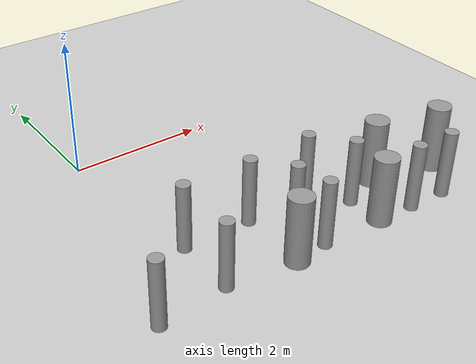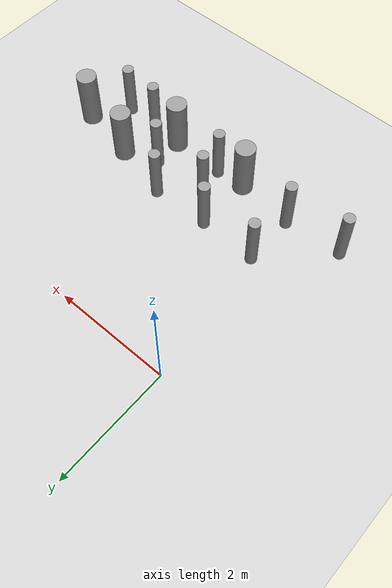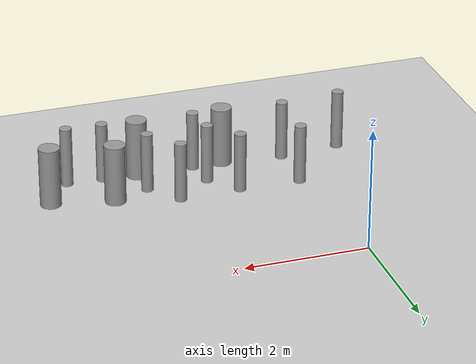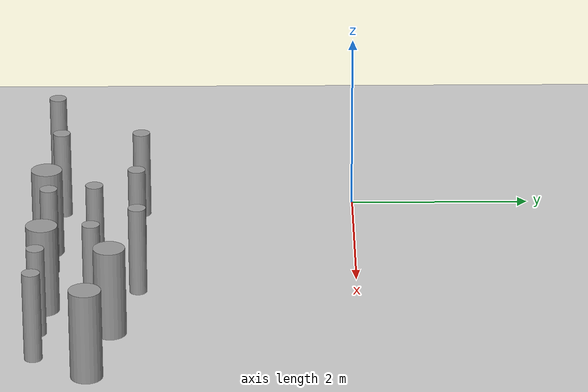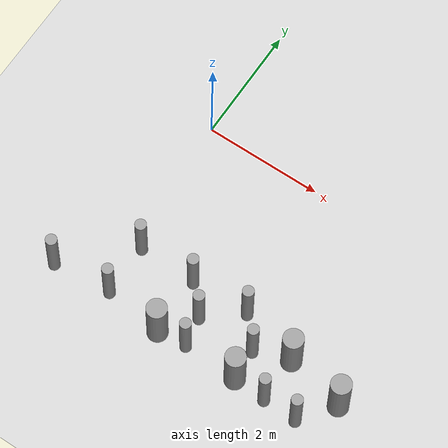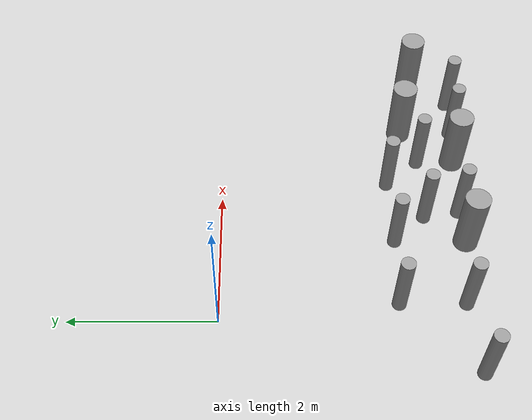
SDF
<sdf version="1.6">
 <world name="default">
  <model name="ground_plane">
   <static>1</static>
   <link name="link">
    <collision name="collision">
     <geometry><plane><normal>0 0 1</normal><size>100 100</size></plane></geometry>
     <surface><friction><ode><mu>100</mu><mu2>50</mu2></ode></friction></surface>
    </collision>
    <visual name="visual">
     <cast_shadows>0</cast_shadows>
     <geometry><plane><normal>0 0 1</normal><size>100 100</size></plane></geometry>
     <material>
      <script><uri>file://media/materials/scripts/gazebo.material</uri><name>Gazebo/Grey</name></script>
     </material>
    </visual>
   </link>
  </model>
  <model name="cyl_wall_clone_0_clone">
   <link name="link_0">
    <pose>-2.73893 -0.366465 0 0 -0 0</pose>
    <inertial>
     <mass>0.0374993</mass>
     <inertia>
      <ixx>0.00321281</ixx>
      <ixy>0</ixy>
      <ixz>0</ixz>
      <iyy>0.00321281</iyy>
      <iyz>0</iyz>
      <izz>0.000175774</izz>
     </inertia>
    </inertial>
    <visual name="visual">
     <geometry><cylinder><radius>0.0968661</radius><length>1</length></cylinder></geometry>
     <material>
      <lighting>1</lighting>
      <script><uri>file://media/materials/scripts/gazebo.material</uri><name>Gazebo/Grey</name></script>
      <ambient>0.3 0.3 0.3 1</ambient>
      <diffuse>0.7 0.7 0.7 1</diffuse>
      <specular>0.01 0.01 0.01 1</specular>
      <emissive>0 0 0 1</emissive>
     </material>
    </visual>
    <collision name="collision">
     <geometry><cylinder><radius>0.096866</radius><length>1</length></cylinder></geometry>
     <surface>
      <friction>
       <ode><mu>1</mu><mu2>1</mu2><fdir1>0 0 0</fdir1><slip1>0</slip1><slip2>0</slip2></ode>
       <torsional>
        <coefficient>1</coefficient>
        <patch_radius>0</patch_radius>
        <surface_radius>0</surface_radius>
        <use_patch_radius>1</use_patch_radius>
        <ode><slip>0</slip></ode>
       </torsional>
      </friction>
      <bounce><restitution_coefficient>0</restitution_coefficient><threshold>1e+06</threshold></bounce>
      <contact>
       <collide_without_contact>0</collide_without_contact>
       <collide_without_contact_bitmask>1</collide_without_contact_bitmask>
       <collide_bitmask>1</collide_bitmask>
       <ode>
        <soft_cfm>0</soft_cfm>
        <soft_erp>0.2</soft_erp>
        <kp>1e+13</kp>
        <kd>1</kd>
        <max_vel>0.01</max_vel>
        <min_depth>0</min_depth>
       </ode>
       <bullet>
        <split_impulse>1</split_impulse>
        <split_impulse_penetration_threshold>-0.01</split_impulse_penetration_threshold>
        <soft_cfm>0</soft_cfm>
        <soft_erp>0.2</soft_erp>
        <kp>1e+13</kp>
        <kd>1</kd>
       </bullet>
      </contact>
     </surface>
    </collision>
   </link>
   <link name="link_0_clone">
    <pose>-1.73893 0.61877 0 0 -0 0</pose>
    <inertial>
     <mass>0.0374993</mass>
     <inertia>
      <ixx>0.00321281</ixx>
      <ixy>0</ixy>
      <ixz>0</ixz>
      <iyy>0.00321281</iyy>
      <iyz>0</iyz>
      <izz>0.000175774</izz>
     </inertia>
    </inertial>
    <visual name="visual">
     <geometry><cylinder><radius>0.0968661</radius><length>1</length></cylinder></geometry>
     <material>
      <lighting>1</lighting>
      <script><uri>file://media/materials/scripts/gazebo.material</uri><name>Gazebo/Grey</name></script>
      <ambient>0.3 0.3 0.3 1</ambient>
      <diffuse>0.7 0.7 0.7 1</diffuse>
      <specular>0.01 0.01 0.01 1</specular>
      <emissive>0 0 0 1</emissive>
      <shader type="pixel"/>
     </material>
    </visual>
    <collision name="collision">
     <geometry><cylinder><radius>0.096866</radius><length>1</length></cylinder></geometry>
     <surface>
      <friction>
       <ode><mu>1</mu><mu2>1</mu2><fdir1>0 0 0</fdir1><slip1>0</slip1><slip2>0</slip2></ode>
       <torsional>
        <coefficient>1</coefficient>
        <patch_radius>0</patch_radius>
        <surface_radius>0</surface_radius>
        <use_patch_radius>1</use_patch_radius>
        <ode><slip>0</slip></ode>
       </torsional>
      </friction>
      <bounce><restitution_coefficient>0</restitution_coefficient><threshold>1e+06</threshold></bounce>
      <contact>
       <collide_without_contact>0</collide_without_contact>
       <collide_without_contact_bitmask>1</collide_without_contact_bitmask>
       <collide_bitmask>1</collide_bitmask>
       <ode>
        <soft_cfm>0</soft_cfm>
        <soft_erp>0.2</soft_erp>
        <kp>1e+13</kp>
        <kd>1</kd>
        <max_vel>0.01</max_vel>
        <min_depth>0</min_depth>
       </ode>
       <bullet>
        <split_impulse>1</split_impulse>
        <split_impulse_penetration_threshold>-0.01</split_impulse_penetration_threshold>
        <soft_cfm>0</soft_cfm>
        <soft_erp>0.2</soft_erp>
        <kp>1e+13</kp>
        <kd>1</kd>
       </bullet>
      </contact>
     </surface>
    </collision>
   </link>
   <link name="link_0_clone_clone">
    <pose>-0.327073 0.143919 0 0 -0 0</pose>
    <inertial>
     <mass>0.0374993</mass>
     <inertia>
      <ixx>0.00321281</ixx>
      <ixy>0</ixy>
      <ixz>0</ixz>
      <iyy>0.00321281</iyy>
      <iyz>0</iyz>
      <izz>0.000175774</izz>
     </inertia>
    </inertial>
    <visual name="visual">
     <geometry><cylinder><radius>0.0968661</radius><length>1</length></cylinder></geometry>
     <material>
      <lighting>1</lighting>
      <script><uri>file://media/materials/scripts/gazebo.material</uri><name>Gazebo/Grey</name></script>
      <ambient>0.3 0.3 0.3 1</ambient>
      <diffuse>0.7 0.7 0.7 1</diffuse>
      <specular>0.01 0.01 0.01 1</specular>
      <emissive>0 0 0 1</emissive>
      <shader type="pixel"/>
     </material>
    </visual>
    <collision name="collision">
     <geometry><cylinder><radius>0.096866</radius><length>1</length></cylinder></geometry>
     <surface>
      <friction>
       <ode><mu>1</mu><mu2>1</mu2><fdir1>0 0 0</fdir1><slip1>0</slip1><slip2>0</slip2></ode>
       <torsional>
        <coefficient>1</coefficient>
        <patch_radius>0</patch_radius>
        <surface_radius>0</surface_radius>
        <use_patch_radius>1</use_patch_radius>
        <ode><slip>0</slip></ode>
       </torsional>
      </friction>
      <bounce><restitution_coefficient>0</restitution_coefficient><threshold>1e+06</threshold></bounce>
      <contact>
       <collide_without_contact>0</collide_without_contact>
       <collide_without_contact_bitmask>1</collide_without_contact_bitmask>
       <collide_bitmask>1</collide_bitmask>
       <ode>
        <soft_cfm>0</soft_cfm>
        <soft_erp>0.2</soft_erp>
        <kp>1e+13</kp>
        <kd>1</kd>
        <max_vel>0.01</max_vel>
        <min_depth>0</min_depth>
       </ode>
       <bullet>
        <split_impulse>1</split_impulse>
        <split_impulse_penetration_threshold>-0.01</split_impulse_penetration_threshold>
        <soft_cfm>0</soft_cfm>
        <soft_erp>0.2</soft_erp>
        <kp>1e+13</kp>
        <kd>1</kd>
       </bullet>
      </contact>
     </surface>
    </collision>
   </link>
   <link name="link_0_clone_clone_0">
    <pose>1.26107 -0.419359 0 0 -0 0</pose>
    <inertial>
     <mass>0.0374993</mass>
     <inertia>
      <ixx>0.00321281</ixx>
      <ixy>0</ixy>
      <ixz>0</ixz>
      <iyy>0.00321281</iyy>
      <iyz>0</iyz>
      <izz>0.000175774</izz>
     </inertia>
    </inertial>
    <visual name="visual">
     <geometry><cylinder><radius>0.0968661</radius><length>1</length></cylinder></geometry>
     <material>
      <lighting>1</lighting>
      <script><uri>file://media/materials/scripts/gazebo.material</uri><name>Gazebo/Grey</name></script>
      <ambient>0.3 0.3 0.3 1</ambient>
      <diffuse>0.7 0.7 0.7 1</diffuse>
      <specular>0.01 0.01 0.01 1</specular>
      <emissive>0 0 0 1</emissive>
      <shader type="pixel"/>
     </material>
    </visual>
    <collision name="collision">
     <geometry><cylinder><radius>0.096866</radius><length>1</length></cylinder></geometry>
     <surface>
      <friction>
       <ode><mu>1</mu><mu2>1</mu2><fdir1>0 0 0</fdir1><slip1>0</slip1><slip2>0</slip2></ode>
       <torsional>
        <coefficient>1</coefficient>
        <patch_radius>0</patch_radius>
        <surface_radius>0</surface_radius>
        <use_patch_radius>1</use_patch_radius>
        <ode><slip>0</slip></ode>
       </torsional>
      </friction>
      <bounce><restitution_coefficient>0</restitution_coefficient><threshold>1e+06</threshold></bounce>
      <contact>
       <collide_without_contact>0</collide_without_contact>
       <collide_without_contact_bitmask>1</collide_without_contact_bitmask>
       <collide_bitmask>1</collide_bitmask>
       <ode>
        <soft_cfm>0</soft_cfm>
        <soft_erp>0.2</soft_erp>
        <kp>1e+13</kp>
        <kd>1</kd>
        <max_vel>0.01</max_vel>
        <min_depth>0</min_depth>
       </ode>
       <bullet>
        <split_impulse>1</split_impulse>
        <split_impulse_penetration_threshold>-0.01</split_impulse_penetration_threshold>
        <soft_cfm>0</soft_cfm>
        <soft_erp>0.2</soft_erp>
        <kp>1e+13</kp>
        <kd>1</kd>
       </bullet>
      </contact>
     </surface>
    </collision>
   </link>
   <link name="link_0_clone_clone_1">
    <pose>-1.73893 -0.277168 0 0 -0 0</pose>
    <inertial>
     <mass>0.0374993</mass>
     <inertia>
      <ixx>0.00321281</ixx>
      <ixy>0</ixy>
      <ixz>0</ixz>
      <iyy>0.00321281</iyy>
      <iyz>0</iyz>
      <izz>0.000175774</izz>
     </inertia>
    </inertial>
    <visual name="visual">
     <geometry><cylinder><radius>0.0968661</radius><length>1</length></cylinder></geometry>
     <material>
      <lighting>1</lighting>
      <script><uri>file://media/materials/scripts/gazebo.material</uri><name>Gazebo/Grey</name></script>
      <ambient>0.3 0.3 0.3 1</ambient>
      <diffuse>0.7 0.7 0.7 1</diffuse>
      <specular>0.01 0.01 0.01 1</specular>
      <emissive>0 0 0 1</emissive>
      <shader type="pixel"/>
     </material>
    </visual>
    <collision name="collision">
     <geometry><cylinder><radius>0.096866</radius><length>1</length></cylinder></geometry>
     <surface>
      <friction>
       <ode><mu>1</mu><mu2>1</mu2><fdir1>0 0 0</fdir1><slip1>0</slip1><slip2>0</slip2></ode>
       <torsional>
        <coefficient>1</coefficient>
        <patch_radius>0</patch_radius>
        <surface_radius>0</surface_radius>
        <use_patch_radius>1</use_patch_radius>
        <ode><slip>0</slip></ode>
       </torsional>
      </friction>
      <bounce><restitution_coefficient>0</restitution_coefficient><threshold>1e+06</threshold></bounce>
      <contact>
       <collide_without_contact>0</collide_without_contact>
       <collide_without_contact_bitmask>1</collide_without_contact_bitmask>
       <collide_bitmask>1</collide_bitmask>
       <ode>
        <soft_cfm>0</soft_cfm>
        <soft_erp>0.2</soft_erp>
        <kp>1e+13</kp>
        <kd>1</kd>
        <max_vel>0.01</max_vel>
        <min_depth>0</min_depth>
       </ode>
       <bullet>
        <split_impulse>1</split_impulse>
        <split_impulse_penetration_threshold>-0.01</split_impulse_penetration_threshold>
        <soft_cfm>0</soft_cfm>
        <soft_erp>0.2</soft_erp>
        <kp>1e+13</kp>
        <kd>1</kd>
       </bullet>
      </contact>
     </surface>
    </collision>
   </link>
   <link name="link_0_clone_clone_2">
    <pose>-0.738934 0.593961 0 0 -0 0</pose>
    <inertial>
     <mass>0.0374993</mass>
     <inertia>
      <ixx>0.00321281</ixx>
      <ixy>0</ixy>
      <ixz>0</ixz>
      <iyy>0.00321281</iyy>
      <iyz>0</iyz>
      <izz>0.000175774</izz>
     </inertia>
    </inertial>
    <visual name="visual">
     <geometry><cylinder><radius>0.0968661</radius><length>1</length></cylinder></geometry>
     <material>
      <lighting>1</lighting>
      <script><uri>file://media/materials/scripts/gazebo.material</uri><name>Gazebo/Grey</name></script>
      <ambient>0.3 0.3 0.3 1</ambient>
      <diffuse>0.7 0.7 0.7 1</diffuse>
      <specular>0.01 0.01 0.01 1</specular>
      <emissive>0 0 0 1</emissive>
      <shader type="pixel"/>
     </material>
    </visual>
    <collision name="collision">
     <geometry><cylinder><radius>0.096866</radius><length>1</length></cylinder></geometry>
     <surface>
      <friction>
       <ode><mu>1</mu><mu2>1</mu2><fdir1>0 0 0</fdir1><slip1>0</slip1><slip2>0</slip2></ode>
       <torsional>
        <coefficient>1</coefficient>
        <patch_radius>0</patch_radius>
        <surface_radius>0</surface_radius>
        <use_patch_radius>1</use_patch_radius>
        <ode><slip>0</slip></ode>
       </torsional>
      </friction>
      <bounce><restitution_coefficient>0</restitution_coefficient><threshold>1e+06</threshold></bounce>
      <contact>
       <collide_without_contact>0</collide_without_contact>
       <collide_without_contact_bitmask>1</collide_without_contact_bitmask>
       <collide_bitmask>1</collide_bitmask>
       <ode>
        <soft_cfm>0</soft_cfm>
        <soft_erp>0.2</soft_erp>
        <kp>1e+13</kp>
        <kd>1</kd>
        <max_vel>0.01</max_vel>
        <min_depth>0</min_depth>
       </ode>
       <bullet>
        <split_impulse>1</split_impulse>
        <split_impulse_penetration_threshold>-0.01</split_impulse_penetration_threshold>
        <soft_cfm>0</soft_cfm>
        <soft_erp>0.2</soft_erp>
        <kp>1e+13</kp>
        <kd>1</kd>
       </bullet>
      </contact>
     </surface>
    </collision>
   </link>
   <link name="link_0_clone_clone_3">
    <pose>0.261066 0.624849 0 0 -0 0</pose>
    <inertial>
     <mass>0.0374993</mass>
     <inertia>
      <ixx>0.00321281</ixx>
      <ixy>0</ixy>
      <ixz>0</ixz>
      <iyy>0.00321281</iyy>
      <iyz>0</iyz>
      <izz>0.000175774</izz>
     </inertia>
    </inertial>
    <visual name="visual">
     <geometry><cylinder><radius>0.0968661</radius><length>1</length></cylinder></geometry>
     <material>
      <lighting>1</lighting>
      <script><uri>file://media/materials/scripts/gazebo.material</uri><name>Gazebo/Grey</name></script>
      <ambient>0.3 0.3 0.3 1</ambient>
      <diffuse>0.7 0.7 0.7 1</diffuse>
      <specular>0.01 0.01 0.01 1</specular>
      <emissive>0 0 0 1</emissive>
      <shader type="pixel"/>
     </material>
    </visual>
    <collision name="collision">
     <geometry><cylinder><radius>0.096866</radius><length>1</length></cylinder></geometry>
     <surface>
      <friction>
       <ode><mu>1</mu><mu2>1</mu2><fdir1>0 0 0</fdir1><slip1>0</slip1><slip2>0</slip2></ode>
       <torsional>
        <coefficient>1</coefficient>
        <patch_radius>0</patch_radius>
        <surface_radius>0</surface_radius>
        <use_patch_radius>1</use_patch_radius>
        <ode><slip>0</slip></ode>
       </torsional>
      </friction>
      <bounce><restitution_coefficient>0</restitution_coefficient><threshold>1e+06</threshold></bounce>
      <contact>
       <collide_without_contact>0</collide_without_contact>
       <collide_without_contact_bitmask>1</collide_without_contact_bitmask>
       <collide_bitmask>1</collide_bitmask>
       <ode>
        <soft_cfm>0</soft_cfm>
        <soft_erp>0.2</soft_erp>
        <kp>1e+13</kp>
        <kd>1</kd>
        <max_vel>0.01</max_vel>
        <min_depth>0</min_depth>
       </ode>
       <bullet>
        <split_impulse>1</split_impulse>
        <split_impulse_penetration_threshold>-0.01</split_impulse_penetration_threshold>
        <soft_cfm>0</soft_cfm>
        <soft_erp>0.2</soft_erp>
        <kp>1e+13</kp>
        <kd>1</kd>
       </bullet>
      </contact>
     </surface>
    </collision>
   </link>
   <link name="link_0_clone_clone_4">
    <pose>-0.239049 -0.353105 0 0 -0 0</pose>
    <inertial>
     <mass>0.0374993</mass>
     <inertia>
      <ixx>0.00321281</ixx>
      <ixy>0</ixy>
      <ixz>0</ixz>
      <iyy>0.00321281</iyy>
      <iyz>0</iyz>
      <izz>0.000175774</izz>
     </inertia>
    </inertial>
    <visual name="visual">
     <geometry><cylinder><radius>0.0968661</radius><length>1</length></cylinder></geometry>
     <material>
      <lighting>1</lighting>
      <script><uri>file://media/materials/scripts/gazebo.material</uri><name>Gazebo/Grey</name></script>
      <ambient>0.3 0.3 0.3 1</ambient>
      <diffuse>0.7 0.7 0.7 1</diffuse>
      <specular>0.01 0.01 0.01 1</specular>
      <emissive>0 0 0 1</emissive>
      <shader type="pixel"/>
     </material>
    </visual>
    <collision name="collision">
     <geometry><cylinder><radius>0.096866</radius><length>1</length></cylinder></geometry>
     <surface>
      <friction>
       <ode><mu>1</mu><mu2>1</mu2><fdir1>0 0 0</fdir1><slip1>0</slip1><slip2>0</slip2></ode>
       <torsional>
        <coefficient>1</coefficient>
        <patch_radius>0</patch_radius>
        <surface_radius>0</surface_radius>
        <use_patch_radius>1</use_patch_radius>
        <ode><slip>0</slip></ode>
       </torsional>
      </friction>
      <bounce><restitution_coefficient>0</restitution_coefficient><threshold>1e+06</threshold></bounce>
      <contact>
       <collide_without_contact>0</collide_without_contact>
       <collide_without_contact_bitmask>1</collide_without_contact_bitmask>
       <collide_bitmask>1</collide_bitmask>
       <ode>
        <soft_cfm>0</soft_cfm>
        <soft_erp>0.2</soft_erp>
        <kp>1e+13</kp>
        <kd>1</kd>
        <max_vel>0.01</max_vel>
        <min_depth>0</min_depth>
       </ode>
       <bullet>
        <split_impulse>1</split_impulse>
        <split_impulse_penetration_threshold>-0.01</split_impulse_penetration_threshold>
        <soft_cfm>0</soft_cfm>
        <soft_erp>0.2</soft_erp>
        <kp>1e+13</kp>
        <kd>1</kd>
       </bullet>
      </contact>
     </surface>
    </collision>
   </link>
   <link name="link_0_clone_clone_5">
    <pose>0.672792 0.143919 0 0 -0 0</pose>
    <inertial>
     <mass>0.0374993</mass>
     <inertia>
      <ixx>0.00321281</ixx>
      <ixy>0</ixy>
      <ixz>0</ixz>
      <iyy>0.00321281</iyy>
      <iyz>0</iyz>
      <izz>0.000175774</izz>
     </inertia>
    </inertial>
    <visual name="visual">
     <geometry><cylinder><radius>0.0968661</radius><length>1</length></cylinder></geometry>
     <material>
      <lighting>1</lighting>
      <script><uri>file://media/materials/scripts/gazebo.material</uri><name>Gazebo/Grey</name></script>
      <ambient>0.3 0.3 0.3 1</ambient>
      <diffuse>0.7 0.7 0.7 1</diffuse>
      <specular>0.01 0.01 0.01 1</specular>
      <emissive>0 0 0 1</emissive>
      <shader type="pixel"/>
     </material>
    </visual>
    <collision name="collision">
     <geometry><cylinder><radius>0.096866</radius><length>1</length></cylinder></geometry>
     <surface>
      <friction>
       <ode><mu>1</mu><mu2>1</mu2><fdir1>0 0 0</fdir1><slip1>0</slip1><slip2>0</slip2></ode>
       <torsional>
        <coefficient>1</coefficient>
        <patch_radius>0</patch_radius>
        <surface_radius>0</surface_radius>
        <use_patch_radius>1</use_patch_radius>
        <ode><slip>0</slip></ode>
       </torsional>
      </friction>
      <bounce><restitution_coefficient>0</restitution_coefficient><threshold>1e+06</threshold></bounce>
      <contact>
       <collide_without_contact>0</collide_without_contact>
       <collide_without_contact_bitmask>1</collide_without_contact_bitmask>
       <collide_bitmask>1</collide_bitmask>
       <ode>
        <soft_cfm>0</soft_cfm>
        <soft_erp>0.2</soft_erp>
        <kp>1e+13</kp>
        <kd>1</kd>
        <max_vel>0.01</max_vel>
        <min_depth>0</min_depth>
       </ode>
       <bullet>
        <split_impulse>1</split_impulse>
        <split_impulse_penetration_threshold>-0.01</split_impulse_penetration_threshold>
        <soft_cfm>0</soft_cfm>
        <soft_erp>0.2</soft_erp>
        <kp>1e+13</kp>
        <kd>1</kd>
       </bullet>
      </contact>
     </surface>
    </collision>
   </link>
   <link name="link_0_clone_clone_6">
    <pose>1.84596 -0.433423 0 0 -0 0</pose>
    <inertial>
     <mass>0.0374993</mass>
     <inertia>
      <ixx>0.00321281</ixx>
      <ixy>0</ixy>
      <ixz>0</ixz>
      <iyy>0.00321281</iyy>
      <iyz>0</iyz>
      <izz>0.000175774</izz>
     </inertia>
    </inertial>
    <visual name="visual">
     <geometry><cylinder><radius>0.0968661</radius><length>1</length></cylinder></geometry>
     <material>
      <lighting>1</lighting>
      <script><uri>file://media/materials/scripts/gazebo.material</uri><name>Gazebo/Grey</name></script>
      <ambient>0.3 0.3 0.3 1</ambient>
      <diffuse>0.7 0.7 0.7 1</diffuse>
      <specular>0.01 0.01 0.01 1</specular>
      <emissive>0 0 0 1</emissive>
      <shader type="pixel"/>
     </material>
    </visual>
    <collision name="collision">
     <geometry><cylinder><radius>0.096866</radius><length>1</length></cylinder></geometry>
     <surface>
      <friction>
       <ode><mu>1</mu><mu2>1</mu2><fdir1>0 0 0</fdir1><slip1>0</slip1><slip2>0</slip2></ode>
       <torsional>
        <coefficient>1</coefficient>
        <patch_radius>0</patch_radius>
        <surface_radius>0</surface_radius>
        <use_patch_radius>1</use_patch_radius>
        <ode><slip>0</slip></ode>
       </torsional>
      </friction>
      <bounce><restitution_coefficient>0</restitution_coefficient><threshold>1e+06</threshold></bounce>
      <contact>
       <collide_without_contact>0</collide_without_contact>
       <collide_without_contact_bitmask>1</collide_without_contact_bitmask>
       <collide_bitmask>1</collide_bitmask>
       <ode>
        <soft_cfm>0</soft_cfm>
        <soft_erp>0.2</soft_erp>
        <kp>1e+13</kp>
        <kd>1</kd>
        <max_vel>0.01</max_vel>
        <min_depth>0</min_depth>
       </ode>
       <bullet>
        <split_impulse>1</split_impulse>
        <split_impulse_penetration_threshold>-0.01</split_impulse_penetration_threshold>
        <soft_cfm>0</soft_cfm>
        <soft_erp>0.2</soft_erp>
        <kp>1e+13</kp>
        <kd>1</kd>
       </bullet>
      </contact>
     </surface>
    </collision>
   </link>
   <link name="link_1">
    <pose>-0.738934 -0.397931 0 0 -0 0</pose>
    <inertial>
     <mass>0.117398</mass>
     <inertia>
      <ixx>0.0106445</ixx>
      <ixy>0</ixy>
      <ixz>0</ixz>
      <iyy>0.0106445</iyy>
      <iyz>0</iyz>
      <izz>0.00172278</izz>
     </inertia>
    </inertial>
    <visual name="visual">
     <geometry><cylinder><radius>0.171317</radius><length>1</length></cylinder></geometry>
     <material>
      <lighting>1</lighting>
      <script><uri>file://media/materials/scripts/gazebo.material</uri><name>Gazebo/Grey</name></script>
      <ambient>0.3 0.3 0.3 1</ambient>
      <diffuse>0.7 0.7 0.7 1</diffuse>
      <specular>0.01 0.01 0.01 1</specular>
      <emissive>0 0 0 1</emissive>
     </material>
    </visual>
    <collision name="collision">
     <geometry><cylinder><radius>0.171317</radius><length>1</length></cylinder></geometry>
     <surface>
      <friction>
       <ode><mu>1</mu><mu2>1</mu2><fdir1>0 0 0</fdir1><slip1>0</slip1><slip2>0</slip2></ode>
       <torsional>
        <coefficient>1</coefficient>
        <patch_radius>0</patch_radius>
        <surface_radius>0</surface_radius>
        <use_patch_radius>1</use_patch_radius>
        <ode><slip>0</slip></ode>
       </torsional>
      </friction>
      <bounce><restitution_coefficient>0</restitution_coefficient><threshold>1e+06</threshold></bounce>
      <contact>
       <collide_without_contact>0</collide_without_contact>
       <collide_without_contact_bitmask>1</collide_without_contact_bitmask>
       <collide_bitmask>1</collide_bitmask>
       <ode>
        <soft_cfm>0</soft_cfm>
        <soft_erp>0.2</soft_erp>
        <kp>1e+13</kp>
        <kd>1</kd>
        <max_vel>0.01</max_vel>
        <min_depth>0</min_depth>
       </ode>
       <bullet>
        <split_impulse>1</split_impulse>
        <split_impulse_penetration_threshold>-0.01</split_impulse_penetration_threshold>
        <soft_cfm>0</soft_cfm>
        <soft_erp>0.2</soft_erp>
        <kp>1e+13</kp>
        <kd>1</kd>
       </bullet>
      </contact>
     </surface>
    </collision>
   </link>
   <link name="link_1_clone">
    <pose>0.697784 -0.380861 0 0 -0 0</pose>
    <inertial>
     <mass>0.117398</mass>
     <inertia>
      <ixx>0.0106445</ixx>
      <ixy>0</ixy>
      <ixz>0</ixz>
      <iyy>0.0106445</iyy>
      <iyz>0</iyz>
      <izz>0.00172278</izz>
     </inertia>
    </inertial>
    <visual name="visual">
     <geometry><cylinder><radius>0.171317</radius><length>1</length></cylinder></geometry>
     <material>
      <lighting>1</lighting>
      <script><uri>file://media/materials/scripts/gazebo.material</uri><name>Gazebo/Grey</name></script>
      <ambient>0.3 0.3 0.3 1</ambient>
      <diffuse>0.7 0.7 0.7 1</diffuse>
      <specular>0.01 0.01 0.01 1</specular>
      <emissive>0 0 0 1</emissive>
      <shader type="pixel"/>
     </material>
    </visual>
    <collision name="collision">
     <geometry><cylinder><radius>0.171317</radius><length>1</length></cylinder></geometry>
     <surface>
      <friction>
       <ode><mu>1</mu><mu2>1</mu2><fdir1>0 0 0</fdir1><slip1>0</slip1><slip2>0</slip2></ode>
       <torsional>
        <coefficient>1</coefficient>
        <patch_radius>0</patch_radius>
        <surface_radius>0</surface_radius>
        <use_patch_radius>1</use_patch_radius>
        <ode><slip>0</slip></ode>
       </torsional>
      </friction>
      <bounce><restitution_coefficient>0</restitution_coefficient><threshold>1e+06</threshold></bounce>
      <contact>
       <collide_without_contact>0</collide_without_contact>
       <collide_without_contact_bitmask>1</collide_without_contact_bitmask>
       <collide_bitmask>1</collide_bitmask>
       <ode>
        <soft_cfm>0</soft_cfm>
        <soft_erp>0.2</soft_erp>
        <kp>1e+13</kp>
        <kd>1</kd>
        <max_vel>0.01</max_vel>
        <min_depth>0</min_depth>
       </ode>
       <bullet>
        <split_impulse>1</split_impulse>
        <split_impulse_penetration_threshold>-0.01</split_impulse_penetration_threshold>
        <soft_cfm>0</soft_cfm>
        <soft_erp>0.2</soft_erp>
        <kp>1e+13</kp>
        <kd>1</kd>
       </bullet>
      </contact>
     </surface>
    </collision>
   </link>
   <link name="link_1_clone_0">
    <pose>1.26107 0.358974 0 0 -0 0</pose>
    <inertial>
     <mass>0.117398</mass>
     <inertia>
      <ixx>0.0106445</ixx>
      <ixy>0</ixy>
      <ixz>0</ixz>
      <iyy>0.0106445</iyy>
      <iyz>0</iyz>
      <izz>0.00172278</izz>
     </inertia>
    </inertial>
    <visual name="visual">
     <geometry><cylinder><radius>0.171317</radius><length>1</length></cylinder></geometry>
     <material>
      <lighting>1</lighting>
      <script><uri>file://media/materials/scripts/gazebo.material</uri><name>Gazebo/Grey</name></script>
      <ambient>0.3 0.3 0.3 1</ambient>
      <diffuse>0.7 0.7 0.7 1</diffuse>
      <specular>0.01 0.01 0.01 1</specular>
      <emissive>0 0 0 1</emissive>
      <shader type="pixel"/>
     </material>
    </visual>
    <collision name="collision">
     <geometry><cylinder><radius>0.171317</radius><length>1</length></cylinder></geometry>
     <surface>
      <friction>
       <ode><mu>1</mu><mu2>1</mu2><fdir1>0 0 0</fdir1><slip1>0</slip1><slip2>0</slip2></ode>
       <torsional>
        <coefficient>1</coefficient>
        <patch_radius>0</patch_radius>
        <surface_radius>0</surface_radius>
        <use_patch_radius>1</use_patch_radius>
        <ode><slip>0</slip></ode>
       </torsional>
      </friction>
      <bounce><restitution_coefficient>0</restitution_coefficient><threshold>1e+06</threshold></bounce>
      <contact>
       <collide_without_contact>0</collide_without_contact>
       <collide_without_contact_bitmask>1</collide_without_contact_bitmask>
       <collide_bitmask>1</collide_bitmask>
       <ode>
        <soft_cfm>0</soft_cfm>
        <soft_erp>0.2</soft_erp>
        <kp>1e+13</kp>
        <kd>1</kd>
        <max_vel>0.01</max_vel>
        <min_depth>0</min_depth>
       </ode>
       <bullet>
        <split_impulse>1</split_impulse>
        <split_impulse_penetration_threshold>-0.01</split_impulse_penetration_threshold>
        <soft_cfm>0</soft_cfm>
        <soft_erp>0.2</soft_erp>
        <kp>1e+13</kp>
        <kd>1</kd>
       </bullet>
      </contact>
     </surface>
    </collision>
   </link>
   <link name="link_1_clone_1">
    <pose>2.26107 0.143919 0 0 -0 0</pose>
    <inertial>
     <mass>0.117398</mass>
     <inertia>
      <ixx>0.0106445</ixx>
      <ixy>0</ixy>
      <ixz>0</ixz>
      <iyy>0.0106445</iyy>
      <iyz>0</iyz>
      <izz>0.00172278</izz>
     </inertia>
    </inertial>
    <visual name="visual">
     <geometry><cylinder><radius>0.171317</radius><length>1</length></cylinder></geometry>
     <material>
      <lighting>1</lighting>
      <script><uri>file://media/materials/scripts/gazebo.material</uri><name>Gazebo/Grey</name></script>
      <ambient>0.3 0.3 0.3 1</ambient>
      <diffuse>0.7 0.7 0.7 1</diffuse>
      <specular>0.01 0.01 0.01 1</specular>
      <emissive>0 0 0 1</emissive>
      <shader type="pixel"/>
     </material>
    </visual>
    <collision name="collision">
     <geometry><cylinder><radius>0.171317</radius><length>1</length></cylinder></geometry>
     <surface>
      <friction>
       <ode><mu>1</mu><mu2>1</mu2><fdir1>0 0 0</fdir1><slip1>0</slip1><slip2>0</slip2></ode>
       <torsional>
        <coefficient>1</coefficient>
        <patch_radius>0</patch_radius>
        <surface_radius>0</surface_radius>
        <use_patch_radius>1</use_patch_radius>
        <ode><slip>0</slip></ode>
       </torsional>
      </friction>
      <bounce><restitution_coefficient>0</restitution_coefficient><threshold>1e+06</threshold></bounce>
      <contact>
       <collide_without_contact>0</collide_without_contact>
       <collide_without_contact_bitmask>1</collide_without_contact_bitmask>
       <collide_bitmask>1</collide_bitmask>
       <ode>
        <soft_cfm>0</soft_cfm>
        <soft_erp>0.2</soft_erp>
        <kp>1e+13</kp>
        <kd>1</kd>
        <max_vel>0.01</max_vel>
        <min_depth>0</min_depth>
       </ode>
       <bullet>
        <split_impulse>1</split_impulse>
        <split_impulse_penetration_threshold>-0.01</split_impulse_penetration_threshold>
        <soft_cfm>0</soft_cfm>
        <soft_erp>0.2</soft_erp>
        <kp>1e+13</kp>
        <kd>1</kd>
       </bullet>
      </contact>
     </surface>
    </collision>
   </link>
   <static>1</static>
   <pose>2.00481 -3.00868 0.5 0 -0 0</pose>
  </model>
 </world>
</sdf>
